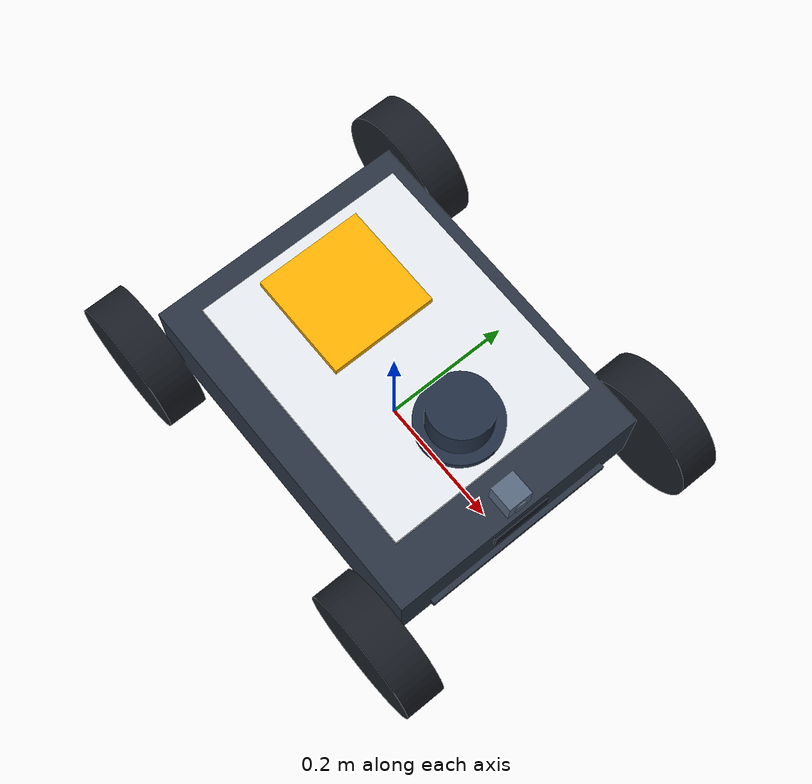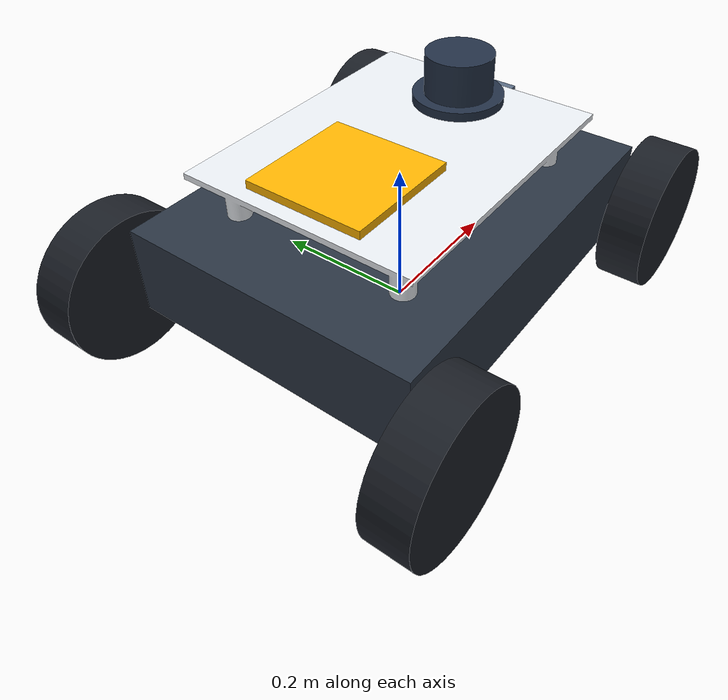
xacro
<?xml version="1.0"?>
<robot name="nav_bot" xmlns:xacro="http://www.ros.org/wiki/xacro">

  <!-- 参数与公共宏 -->
  <xacro:include filename="$(find nav_bot_description)/urdf/common/properties.xacro"/>
  <xacro:include filename="$(find nav_bot_description)/urdf/common/inertia.xacro"/>
  <xacro:include filename="$(find nav_bot_description)/urdf/common/materials.xacro"/>

  <!-- 车体 / 轮系 / 传感器 -->
  <xacro:include filename="$(find nav_bot_description)/urdf/base.xacro"/>
  <xacro:include filename="$(find nav_bot_description)/urdf/wheels.xacro"/>
  <xacro:include filename="$(find nav_bot_description)/urdf/sensors.xacro"/>

  <!-- Gazebo 扩展（Gazebo Harmonic / gz-sim，RViz 忽略） -->
  <xacro:include filename="$(find nav_bot_description)/urdf/gazebo.xacro"/>

</robot>

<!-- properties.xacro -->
<robot xmlns:xacro="http://www.ros.org/wiki/xacro">

  <!-- ======================== 运动学基准（R = 0.09 m） ======================== -->
  <xacro:property name="wheel_radius"      value="0.09"/>   <!-- 轮半径 Ø180 mm -->
  <xacro:property name="wheel_width"       value="0.060"/>  <!-- 轮宽 60 mm -->
  <xacro:property name="track_width"       value="0.48"/>   <!-- 轮距：左右轮 y = ±0.24 -->
  <xacro:property name="wheel_y"           value="${track_width / 2.0}"/>
  <xacro:property name="wheelbase"         value="0.52"/>   <!-- 轴距：前后轮 x = ±0.26 -->
  <xacro:property name="wheel_x"           value="${wheelbase / 2.0}"/>
  <xacro:property name="wheel_z"           value="${wheel_radius}"/>  <!-- 轮心高 = R，贴地 -->
  <xacro:property name="ground_clearance"  value="0.06"/>   <!-- 底盘离地间隙 -->
  <xacro:property name="max_linear_vel"    value="0.8"/>    <!-- m/s，350 rpm 估算 -->
  <xacro:property name="max_angular_vel"   value="1.5"/>    <!-- rad/s（v / 半轮距） -->

  <!-- ======================== base_link 底盘框架 ======================== -->
  <!-- 520×400×120 mm；质量 = 框架 4.2 + 电机 3.4(×4) + 轮轴 0.6 + 计算单元 0.9 + 电池 2.8（并入） -->
  <xacro:property name="chassis_x"         value="0.520"/>
  <xacro:property name="chassis_y"         value="0.400"/>
  <xacro:property name="chassis_z"         value="0.120"/>
  <xacro:property name="chassis_mass"      value="9.10"/>
  <xacro:property name="battery_mass"      value="2.8"/>    <!-- 电池不单独建模，惯量并入 -->
  <xacro:property name="base_mass"         value="${chassis_mass + battery_mass}"/>
  <!-- 箱体中心高：离地间隙 + 半高 = 0.12 m（箱底 z = 0.06） -->
  <xacro:property name="chassis_center_z"  value="${ground_clearance + chassis_z / 2.0}"/>

  <!-- 驱动轮轮轴（连接车体与外露轮子的短轴，仅视觉件） -->
  <xacro:property name="axle_radius"       value="0.015"/>
  <xacro:property name="axle_length"       value="0.030"/>

  <!-- ======================== 驱动轮 ======================== -->
  <xacro:property name="wheel_mass"        value="0.65"/>   <!-- 尼龙轮毂 + PU 胎，×4 同规格 -->

  <!-- ======================== platform_link 平台顶板 ======================== -->
  <!-- 400×320×8 mm，平台面离地 0.24 m -->
  <xacro:property name="platform_x"        value="0.400"/>
  <xacro:property name="platform_y"        value="0.320"/>
  <xacro:property name="platform_z"        value="0.008"/>
  <xacro:property name="platform_mass"     value="0.90"/>
  <xacro:property name="platform_joint_z"  value="0.24"/>

  <!-- 顶板支撑立柱 ×4（连接底盘顶面到顶板底面，消除顶板悬空感） -->
  <xacro:property name="column_radius"     value="0.015"/>
  <xacro:property name="column_xy"         value="${[0.16, 0.12]}"/>  <!-- 角柱 [x, y]，四角对称 -->
  <xacro:property name="column_height"     value="${platform_joint_z - platform_z / 2.0 - (ground_clearance + chassis_z)}"/>

  <!-- ======================== arm_base_link 机械臂安装基座 ======================== -->
  <!-- 160×160×12 mm，7075 铝，4×M6 孔位 250×200 mm，Z 轴预留 0.45 m -->
  <xacro:property name="arm_base_x"        value="0.160"/>
  <xacro:property name="arm_base_y"        value="0.160"/>
  <xacro:property name="arm_base_z"        value="0.012"/>
  <xacro:property name="arm_base_mass"     value="0.55"/>
  <xacro:property name="arm_mount_x"       value="-0.10"/>  <!-- 相对 platform_link -->
  <xacro:property name="arm_mount_z"       value="0.004"/>  <!-- 顶板表面 -->

  <!-- ======================== 传感器 ======================== -->
  <!-- 激光雷达 Ø90×65 mm，0.19 kg，平台前部中线，扫描面离地 0.28 m -->
  <xacro:property name="lidar_radius"      value="0.045"/>
  <xacro:property name="lidar_height"      value="0.065"/>
  <xacro:property name="lidar_mass"        value="0.19"/>
  <xacro:property name="lidar_xyz"         value="${[0.13, 0.0, 0.28]}"/>  <!-- 收进顶板投影内，坐于顶板上方 -->

  <!-- IMU 36×24×10 mm，0.02 kg，贴近轮轴、刚性固定，周边 100 mm 内禁止动力线 -->
  <xacro:property name="imu_x"             value="0.036"/>
  <xacro:property name="imu_y"             value="0.024"/>
  <xacro:property name="imu_z"             value="0.010"/>
  <xacro:property name="imu_mass"          value="0.02"/>
  <xacro:property name="imu_xyz"           value="${[0.0, 0.0, 0.06]}"/>

  <!-- 深度相机 90×25×25 mm，0.07 kg
       外形 v2.4（隐藏式）：link 水平、完全藏进车头（y=0 正中），前脸唯一可见部分是
       一块与面板齐平的深色玻璃窗；-15° 下俯角保留在 Gazebo 传感器 pose 中（外观零凸出）。
       link 原点在面板内侧 1mm（x=0.259，面板 x=0.26） -->
  <xacro:property name="depth_cam_x"       value="0.090"/>
  <xacro:property name="depth_cam_y"       value="0.025"/>
  <xacro:property name="depth_cam_z"       value="0.025"/>
  <xacro:property name="depth_cam_mass"    value="0.07"/>
  <xacro:property name="depth_cam_xyz"     value="${[0.259, 0.0, 0.15]}"/>  <!-- 相对 base_link，前面板 x=0.26 -->
  <xacro:property name="depth_cam_pitch"   value="-0.262"/>  <!-- -15 deg，只作用于传感器 -->
  <xacro:property name="depth_cam_win_y"   value="0.090"/>   <!-- 玻璃窗宽 -->
  <xacro:property name="depth_cam_win_z"   value="0.030"/>   <!-- 玻璃窗高 -->

  <!-- RGB 摄像头 38×38×38 mm，0.05 kg
       外形 v2.2：取消长杆/短支架，平嵌进顶板前缘（模块化传感器，无外伸杆件），
       光轴水平（原 -5° 下俯随嵌入取消）；立方体顶 0.259 < 雷达扫描面 0.28，不遮挡 -->
  <xacro:property name="camera_size"       value="0.038"/>
  <xacro:property name="camera_mass"       value="0.05"/>
  <xacro:property name="camera_xyz"        value="${[0.235, 0.0, -0.04]}"/>  <!-- 相对 platform_link，骑前缘半嵌 -->
  <xacro:property name="camera_pitch"      value="0.0"/>

  <!-- 前脸灯带（纯视觉件，参考整机渲染风格）：底盘前面板细长条 -->
  <xacro:property name="front_strip_x"     value="0.300"/>
  <xacro:property name="front_strip_y"     value="0.008"/>
  <xacro:property name="front_strip_z"     value="0.012"/>
  <xacro:property name="front_strip_cz"    value="0.09"/>   <!-- 离地高（避开嵌入的深度相机区 0.126–0.174） -->

  <!-- 雷达底座法兰（视觉件，"圆盘 + 圆柱"造型） -->
  <xacro:property name="lidar_flange_radius" value="0.060"/>
  <xacro:property name="lidar_flange_z"    value="-0.031"/>  <!-- 相对 lidar_link（桥接顶板面与雷达筒底） -->

</robot>

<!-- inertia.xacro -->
<!--
  inertia.xacro — 简化惯性张量宏（盒 / 圆柱 / 球近似）
  规范要求：inertial 为简化惯量，Gazebo 仿真够用，精确值后续用 CAD 导出替换。
  注意：每个 link 必须有非零质量的 inertial，质量为 0 会让模型在 Gazebo 里乱飞。
-->
<robot xmlns:xacro="http://www.ros.org/wiki/xacro">

  <!-- 长方体（均匀密度），轴线沿自身 x/y/z -->
  <xacro:macro name="box_inertial" params="mass x y z">
    <inertial>
      <mass value="${mass}"/>
      <origin xyz="0 0 0" rpy="0 0 0"/>
      <inertia
        ixx="${mass * (y*y + z*z) / 12.0}"
        ixy="0.0" ixz="0.0"
        iyy="${mass * (x*x + z*z) / 12.0}"
        iyz="0.0"
        izz="${mass * (x*x + y*y) / 12.0}"/>
    </inertial>
  </xacro:macro>

  <!-- 实心圆柱，旋转轴为自身 z（URDF cylinder 几何轴） -->
  <xacro:macro name="cylinder_inertial" params="mass radius length">
    <inertial>
      <mass value="${mass}"/>
      <origin xyz="0 0 0" rpy="0 0 0"/>
      <inertia
        ixx="${mass * (3.0 * radius*radius + length*length) / 12.0}"
        ixy="0.0" ixz="0.0"
        iyy="${mass * (3.0 * radius*radius + length*length) / 12.0}"
        iyz="0.0"
        izz="${0.5 * mass * radius*radius}"/>
    </inertial>
  </xacro:macro>

  <!-- 驱动轮专用：几何经 rpy=90° 绕 x 旋转，旋转轴对齐 link 的 y 轴 -->
  <xacro:macro name="wheel_inertial" params="mass radius width">
    <inertial>
      <mass value="${mass}"/>
      <origin xyz="0 0 0" rpy="0 0 0"/>
      <inertia
        ixx="${mass * (3.0 * radius*radius + width*width) / 12.0}"
        ixy="0.0" ixz="0.0"
        iyy="${0.5 * mass * radius*radius}"
        iyz="0.0"
        izz="${mass * (3.0 * radius*radius + width*width) / 12.0}"/>
    </inertial>
  </xacro:macro>

  <!-- 实心球（万向轮碰撞/惯量近似） -->
  <xacro:macro name="sphere_inertial" params="mass radius">
    <inertial>
      <mass value="${mass}"/>
      <origin xyz="0 0 0" rpy="0 0 0"/>
      <inertia
        ixx="${0.4 * mass * radius*radius}"
        ixy="0.0" ixz="0.0"
        iyy="${0.4 * mass * radius*radius}"
        iyz="0.0"
        izz="${0.4 * mass * radius*radius}"/>
    </inertial>
  </xacro:macro>

</robot>

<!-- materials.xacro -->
<!--
  materials.xacro — 颜色材质定义
  数据来源：robot_params.yaml -> robot.color_scheme（机身配色规范）
  规范稿材料库（参考密度）：6061-T6 2700 / 7075 2810 / 尼龙+PU 1150 / PC 1200 kg/m^3
-->
<robot xmlns:xacro="http://www.ros.org/wiki/xacro">

  <!-- 车身主色 白色 #E8ECF1（底盘箱体/顶板/角柱） -->
  <material name="body_white">
    <color rgba="${0xE8/255.0} ${0xEC/255.0} ${0xF1/255.0} 1.0"/>
  </material>

  <!-- 底盘深灰 #2A3442 -->
  <material name="chassis_dark">
    <color rgba="${0x2A/255.0} ${0x34/255.0} ${0x42/255.0} 1.0"/>
  </material>

  <!-- 点缀琥珀 #FFB300（机械臂基座/警示） -->
  <material name="accent_amber">
    <color rgba="${0xFF/255.0} ${0xB3/255.0} ${0x00/255.0} 1.0"/>
  </material>

  <!-- 轮胎深黑 #1B1F26 -->
  <material name="tire_black">
    <color rgba="${0x1B/255.0} ${0x1F/255.0} ${0x26/255.0} 1.0"/>
  </material>

  <!-- 传感器外壳 #223045 -->
  <material name="sensor_navy">
    <color rgba="${0x22/255.0} ${0x30/255.0} ${0x45/255.0} 1.0"/>
  </material>

  <!-- 深度相机 #FF6B35 -->
  <material name="depth_cam_orange">
    <color rgba="${0xFF/255.0} ${0x6B/255.0} ${0x35/255.0} 1.0"/>
  </material>

  <!-- RGB 摄像头 #5A6B82 -->
  <material name="camera_gray">
    <color rgba="${0x5A/255.0} ${0x6B/255.0} ${0x82/255.0} 1.0"/>
  </material>

  <!-- 前脸灯带点缀 #22D3EE（青色，纯视觉件） -->
  <material name="accent_cyan">
    <color rgba="${0x22/255.0} ${0xD3/255.0} ${0xEE/255.0} 1.0"/>
  </material>

  <!-- 传感器玻璃窗 #141B26（深蓝黑镜面，深度相机隐藏式视窗） -->
  <material name="lens_dark">
    <color rgba="${0x14/255.0} ${0x1B/255.0} ${0x26/255.0} 1.0"/>
  </material>

</robot>

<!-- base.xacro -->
<!--
  base.xacro — 车体：base_link（底盘框架）+ platform_link（顶板）+ arm_base_link（机械臂基座）
  base_link 原点在地面上；电池/4 电机/轮轴/计算单元不单独建模，质量并入 base_link（11.9 kg）。
-->
<robot xmlns:xacro="http://www.ros.org/wiki/xacro">

  <!-- 外观网格（外观 v2.5）：visual 引用 meshes/ 下的 .dae（自带材质色）；
       碰撞体保持简化几何体（规范要求，禁止复用外观 mesh）。 -->

  <!-- ==================== base_footprint（零质量根 link，仅用于 TF） ==================== -->
  <link name="base_footprint"/>
  <joint name="base_footprint_joint" type="fixed">
    <parent link="base_footprint"/>
    <child link="base_link"/>
    <origin xyz="0 0 0" rpy="0 0 0"/>
  </joint>

  <!-- ==================== base_link 底盘框架 520×400×120 mm ==================== -->
  <link name="base_link">
    <!-- 外观 mesh：底盘箱体 + 前脸青色灯带（已在 mesh 内合并，坐标以 link 原点为基准） -->
    <visual>
      <origin xyz="0 0 0" rpy="0 0 0"/>
      <geometry>
        <mesh filename="package://nav_bot_description/meshes/base_link.stl"/>
      </geometry>
      <material name="chassis_dark"/>
    </visual>
    <collision>
      <!-- 简化几何体：与 visual 相同的 box（禁止复用高精度 mesh） -->
      <origin xyz="0 0 ${chassis_center_z}" rpy="0 0 0"/>
      <geometry>
        <box size="${chassis_x} ${chassis_y} ${chassis_z}"/>
      </geometry>
    </collision>
    <!-- 惯量并入电池后按整箱近似，质心偏后（电池底面居中偏后，配重项） -->
    <inertial>
      <mass value="${base_mass}"/>
      <origin xyz="-0.03 0 ${chassis_center_z}" rpy="0 0 0"/>
      <inertia
        ixx="${base_mass * (chassis_y*chassis_y + chassis_z*chassis_z) / 12.0}"
        ixy="0.0" ixz="0.0"
        iyy="${base_mass * (chassis_x*chassis_x + chassis_z*chassis_z) / 12.0}"
        iyz="0.0"
        izz="${base_mass * (chassis_x*chassis_x + chassis_y*chassis_y) / 12.0}"/>
    </inertial>
  </link>

  <!-- ==================== platform_link 平台顶板 400×320×8 mm ==================== -->
  <joint name="platform_joint" type="fixed">
    <parent link="base_link"/>
    <child link="platform_link"/>
    <origin xyz="0 0 ${platform_joint_z}" rpy="0 0 0"/>
  </joint>
  <link name="platform_link">
    <!-- 外观 mesh：顶板 + 四根支撑角柱（已在 mesh 内合并） -->
    <visual>
      <origin xyz="0 0 0" rpy="0 0 0"/>
      <geometry>
        <mesh filename="package://nav_bot_description/meshes/platform_link.stl"/>
      </geometry>
      <material name="body_white"/>
    </visual>
    <collision>
      <origin xyz="0 0 0" rpy="0 0 0"/>
      <geometry>
        <box size="${platform_x} ${platform_y} ${platform_z}"/>
      </geometry>
    </collision>
    <xacro:box_inertial mass="${platform_mass}" x="${platform_x}" y="${platform_y}" z="${platform_z}"/>
  </link>

  <!-- ==================== arm_base_link 机械臂安装基座（预留） ==================== -->
  <!-- 4×M6 孔位 250×200 mm，锁附底盘立柱；Z 轴预留 0.45 m（含回转） -->
  <joint name="arm_mount_joint" type="fixed">
    <parent link="platform_link"/>
    <child link="arm_base_link"/>
    <origin xyz="${arm_mount_x} 0 ${arm_mount_z}" rpy="0 0 0"/>
  </joint>
  <link name="arm_base_link">
    <visual>
      <origin xyz="0 0 0" rpy="0 0 0"/>
      <geometry>
        <mesh filename="package://nav_bot_description/meshes/arm_base_link.stl"/>
      </geometry>
      <material name="accent_amber"/>
    </visual>
    <collision>
      <origin xyz="0 0 ${arm_base_z / 2.0}" rpy="0 0 0"/>
      <geometry>
        <box size="${arm_base_x} ${arm_base_y} ${arm_base_z}"/>
      </geometry>
    </collision>
    <inertial>
      <mass value="${arm_base_mass}"/>
      <origin xyz="0 0 ${arm_base_z / 2.0}" rpy="0 0 0"/>
      <inertia
        ixx="${arm_base_mass * (arm_base_y*arm_base_y + arm_base_z*arm_base_z) / 12.0}"
        ixy="0.0" ixz="0.0"
        iyy="${arm_base_mass * (arm_base_x*arm_base_x + arm_base_z*arm_base_z) / 12.0}"
        iyz="0.0"
        izz="${arm_base_mass * (arm_base_x*arm_base_x + arm_base_y*arm_base_y) / 12.0}"/>
    </inertial>
  </link>

</robot>

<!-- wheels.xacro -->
<robot xmlns:xacro="http://www.ros.org/wiki/xacro">

  <!-- ==================== 驱动轮宏 ==================== -->
  <!-- name: lf / rf / lb / rb；x: 安装点纵向；y_sign: +1 左 / -1 右。
       左右轮 axis 均为 +y（REP-103 统一约定，差速插件按关节名区分左右）。 -->
  <xacro:macro name="drive_wheel" params="name x y_sign joint_name">
    <joint name="${joint_name}" type="continuous">
      <parent link="base_link"/>
      <child link="wheel_${name}_link"/>
      <origin xyz="${x} ${y_sign * wheel_y} ${wheel_z}" rpy="0 0 0"/>
      <axis xyz="0 1 0"/>
      <limit effort="10.0" velocity="${2.0 * pi * 350.0 / 60.0}"/>  <!-- 350 rpm -->
    </joint>
    <link name="wheel_${name}_link">
      <!-- 外观 mesh：轮胎 + 朝车体侧的短轮轴（已在 mesh 内合并，四轮共用） -->
      <visual>
        <origin xyz="0 0 0" rpy="0 0 0"/>
        <geometry>
          <mesh filename="package://nav_bot_description/meshes/wheel.stl"/>
        </geometry>
        <material name="tire_black"/>
      </visual>
      <collision>
        <origin xyz="0 0 0" rpy="0 0 0"/>
        <geometry>
          <sphere radius="${wheel_radius}"/>
        </geometry>
      </collision>
      <!-- 惯量主轴已对齐 link y 轴，无需再转 -->
      <xacro:wheel_inertial mass="${wheel_mass}" radius="${wheel_radius}" width="${wheel_width}"/>
    </link>
  </xacro:macro>

  <xacro:drive_wheel name="lf" x="${wheel_x}"  y_sign="1"  joint_name="left_front_wheel_joint"/>
  <xacro:drive_wheel name="rf" x="${wheel_x}"  y_sign="-1" joint_name="right_front_wheel_joint"/>
  <xacro:drive_wheel name="lb" x="${-wheel_x}" y_sign="1"  joint_name="left_rear_wheel_joint"/>
  <xacro:drive_wheel name="rb" x="${-wheel_x}" y_sign="-1" joint_name="right_rear_wheel_joint"/>

</robot>

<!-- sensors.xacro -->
<robot xmlns:xacro="http://www.ros.org/wiki/xacro">

  <!-- ==================== 激光雷达 Ø90×65 mm（圆盘底座 + 圆柱，直接坐于顶板） ==================== -->
  <joint name="lidar_joint" type="fixed">
    <parent link="base_link"/>
    <child link="lidar_link"/>
    <origin xyz="${lidar_xyz[0]} ${lidar_xyz[1]} ${lidar_xyz[2]}" rpy="0 0 0"/>
  </joint>
  <link name="lidar_link">
    <!-- 外观 mesh：雷达筒 + 底座法兰（已在 mesh 内合并） -->
    <visual>
      <origin xyz="0 0 0" rpy="0 0 0"/>
      <geometry>
        <mesh filename="package://nav_bot_description/meshes/lidar_link.stl"/>
      </geometry>
      <material name="sensor_navy"/>
    </visual>
    <collision>
      <origin xyz="0 0 0" rpy="0 0 0"/>
      <geometry>
        <cylinder radius="${lidar_radius}" length="${lidar_height}"/>
      </geometry>
    </collision>
    <xacro:cylinder_inertial mass="${lidar_mass}" radius="${lidar_radius}" length="${lidar_height}"/>
  </link>

  <!-- ==================== IMU 36×24×10 mm ==================== -->
  <joint name="imu_joint" type="fixed">
    <parent link="base_link"/>
    <child link="imu_link"/>
    <origin xyz="${imu_xyz[0]} ${imu_xyz[1]} ${imu_xyz[2]}" rpy="0 0 0"/>
  </joint>
  <link name="imu_link">
    <visual>
      <origin xyz="0 0 0" rpy="0 0 0"/>
      <geometry>
        <mesh filename="package://nav_bot_description/meshes/imu_link.stl"/>
      </geometry>
      <material name="sensor_navy"/>
    </visual>
    <collision>
      <origin xyz="0 0 0" rpy="0 0 0"/>
      <geometry>
        <box size="${imu_x} ${imu_y} ${imu_z}"/>
      </geometry>
    </collision>
    <xacro:box_inertial mass="${imu_mass}" x="${imu_x}" y="${imu_y}" z="${imu_z}"/>
  </link>

  <!-- ==================== 深度相机（隐藏式：藏于车头，前脸仅一块玻璃视窗） ==================== -->
  <!-- 外形 v2.4：link 水平、无任何外凸；-15° 下俯在 Gazebo 传感器 pose 中实现。
       碰撞体/惯量整体内移 40mm，保证不穿出前面板。 -->
  <joint name="depth_camera_joint" type="fixed">
    <parent link="base_link"/>
    <child link="depth_camera_link"/>
    <origin xyz="${depth_cam_xyz[0]} ${depth_cam_xyz[1]} ${depth_cam_xyz[2]}" rpy="0 0 0"/>
  </joint>
  <link name="depth_camera_link">
    <!-- 外观 mesh：前脸齐平玻璃视窗（唯一可见部分，机身藏于车头内无外观） -->
    <visual>
      <origin xyz="0 0 0" rpy="0 0 0"/>
      <geometry>
        <mesh filename="package://nav_bot_description/meshes/depth_camera_link.stl"/>
      </geometry>
      <material name="lens_dark"/>
    </visual>
    <!-- 相机机身：完全藏于车头内（不可见，仅碰撞/惯量） -->
    <collision>
      <origin xyz="-0.04 0 0" rpy="0 0 0"/>
      <geometry>
        <box size="${depth_cam_x} ${depth_cam_y} ${depth_cam_z}"/>
      </geometry>
    </collision>
    <inertial>
      <mass value="${depth_cam_mass}"/>
      <origin xyz="-0.04 0 0" rpy="0 0 0"/>
      <inertia
        ixx="${depth_cam_mass * (depth_cam_y*depth_cam_y + depth_cam_z*depth_cam_z) / 12.0}"
        ixy="0.0" ixz="0.0"
        iyy="${depth_cam_mass * (depth_cam_x*depth_cam_x + depth_cam_z*depth_cam_z) / 12.0}"
        iyz="0.0"
        izz="${depth_cam_mass * (depth_cam_x*depth_cam_x + depth_cam_y*depth_cam_y) / 12.0}"/>
    </inertial>
  </link>

  <!-- ==================== RGB 摄像头 38×38×38 mm（平嵌顶板前缘，无外伸杆） ==================== -->
  <joint name="camera_joint" type="fixed">
    <parent link="platform_link"/>
    <child link="camera_link"/>
    <origin xyz="${camera_xyz[0]} ${camera_xyz[1]} ${camera_xyz[2]}"
            rpy="0 ${camera_pitch} 0"/>
  </joint>
  <link name="camera_link">
    <!-- 外观 mesh：相机方块 + 前侧镜头圆片（已在 mesh 内合并） -->
    <visual>
      <origin xyz="0 0 0" rpy="0 0 0"/>
      <geometry>
        <mesh filename="package://nav_bot_description/meshes/camera_link.stl"/>
      </geometry>
      <material name="camera_gray"/>
    </visual>
    <collision>
      <origin xyz="0 0 0" rpy="0 0 0"/>
      <geometry>
        <box size="${camera_size} ${camera_size} ${camera_size}"/>
      </geometry>
    </collision>
    <xacro:box_inertial mass="${camera_mass}" x="${camera_size}" y="${camera_size}" z="${camera_size}"/>
  </link>

</robot>
